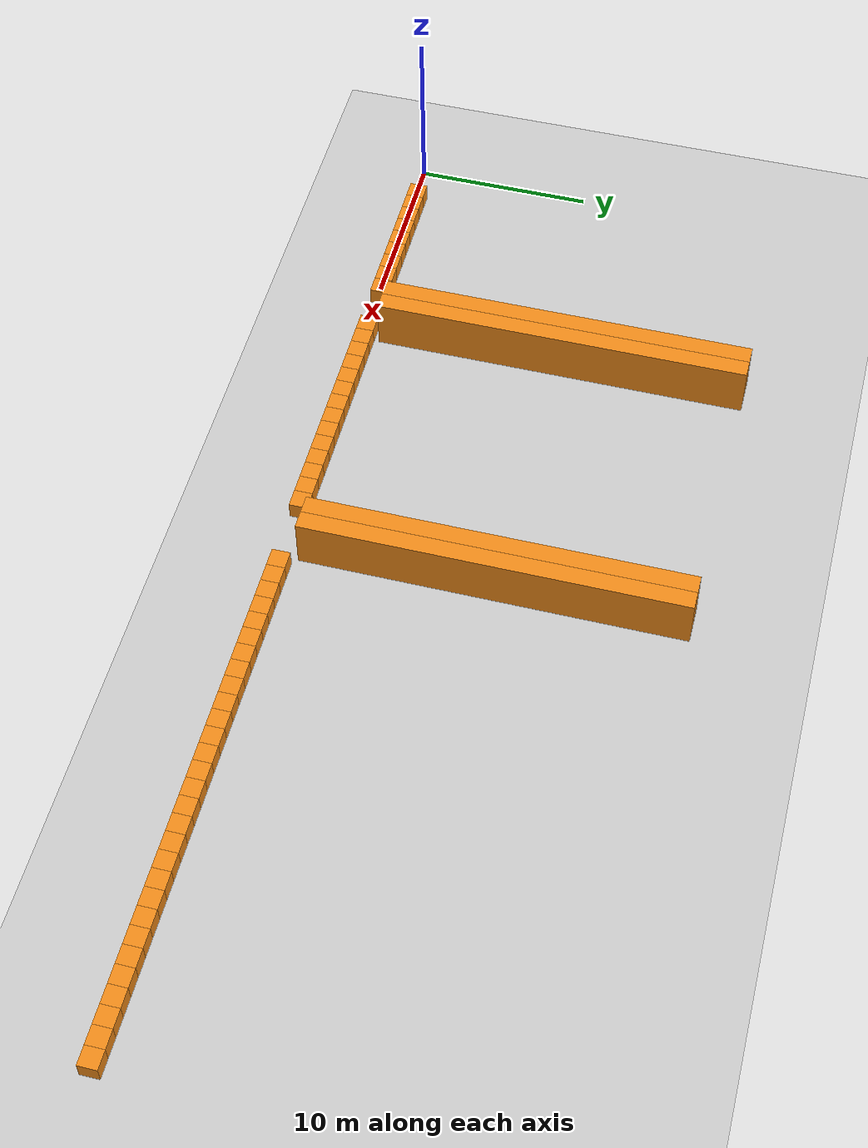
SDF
<sdf version="1.6">
 <world name="default">
  <include><uri>model://ground_plane</uri></include>
  <model name="unit_box_002">
   <pose>3.50     0.50     1.50 0 0 0</pose>
   <static>1</static>
   <link name="link">
    <inertial>
     <mass>5000</mass>
     <inertia><ixx>200</ixx><ixy>0</ixy><ixz>0</ixz><iyy>200</iyy><iyz>0</iyz><izz>200</izz></inertia>
    </inertial>
    <collision name="collision"><geometry><box><size>1 1 1</size></box></geometry></collision>
    <visual name="visual">
     <geometry><box><size>1 1 1</size></box></geometry>
     <material>
      <script><name>Gazebo/Orange</name><uri>file://media/materials/scripts/gazebo.material</uri></script>
     </material>
    </visual>
   </link>
  </model>
  <model name="unit_box_005">
   <pose>4.50     0.50     1.50 0 0 0</pose>
   <static>1</static>
   <link name="link">
    <inertial>
     <mass>5000</mass>
     <inertia><ixx>200</ixx><ixy>0</ixy><ixz>0</ixz><iyy>200</iyy><iyz>0</iyz><izz>200</izz></inertia>
    </inertial>
    <collision name="collision"><geometry><box><size>1 1 1</size></box></geometry></collision>
    <visual name="visual">
     <geometry><box><size>1 1 1</size></box></geometry>
     <material>
      <script><name>Gazebo/Orange</name><uri>file://media/materials/scripts/gazebo.material</uri></script>
     </material>
    </visual>
   </link>
  </model>
  <model name="unit_box_008">
   <pose>5.50     0.50     1.50 0 0 0</pose>
   <static>1</static>
   <link name="link">
    <inertial>
     <mass>5000</mass>
     <inertia><ixx>200</ixx><ixy>0</ixy><ixz>0</ixz><iyy>200</iyy><iyz>0</iyz><izz>200</izz></inertia>
    </inertial>
    <collision name="collision"><geometry><box><size>1 1 1</size></box></geometry></collision>
    <visual name="visual">
     <geometry><box><size>1 1 1</size></box></geometry>
     <material>
      <script><name>Gazebo/Orange</name><uri>file://media/materials/scripts/gazebo.material</uri></script>
     </material>
    </visual>
   </link>
  </model>
  <model name="unit_box_011">
   <pose>6.50     0.50     1.50 0 0 0</pose>
   <static>1</static>
   <link name="link">
    <inertial>
     <mass>5000</mass>
     <inertia><ixx>200</ixx><ixy>0</ixy><ixz>0</ixz><iyy>200</iyy><iyz>0</iyz><izz>200</izz></inertia>
    </inertial>
    <collision name="collision"><geometry><box><size>1 1 1</size></box></geometry></collision>
    <visual name="visual">
     <geometry><box><size>1 1 1</size></box></geometry>
     <material>
      <script><name>Gazebo/Orange</name><uri>file://media/materials/scripts/gazebo.material</uri></script>
     </material>
    </visual>
   </link>
  </model>
  <model name="unit_box_014">
   <pose>7.50     0.50     1.50 0 0 0</pose>
   <static>1</static>
   <link name="link">
    <inertial>
     <mass>5000</mass>
     <inertia><ixx>200</ixx><ixy>0</ixy><ixz>0</ixz><iyy>200</iyy><iyz>0</iyz><izz>200</izz></inertia>
    </inertial>
    <collision name="collision"><geometry><box><size>1 1 1</size></box></geometry></collision>
    <visual name="visual">
     <geometry><box><size>1 1 1</size></box></geometry>
     <material>
      <script><name>Gazebo/Orange</name><uri>file://media/materials/scripts/gazebo.material</uri></script>
     </material>
    </visual>
   </link>
  </model>
  <model name="unit_box_017">
   <pose>8.50     0.50     1.50 0 0 0</pose>
   <static>1</static>
   <link name="link">
    <inertial>
     <mass>5000</mass>
     <inertia><ixx>200</ixx><ixy>0</ixy><ixz>0</ixz><iyy>200</iyy><iyz>0</iyz><izz>200</izz></inertia>
    </inertial>
    <collision name="collision"><geometry><box><size>1 1 1</size></box></geometry></collision>
    <visual name="visual">
     <geometry><box><size>1 1 1</size></box></geometry>
     <material>
      <script><name>Gazebo/Orange</name><uri>file://media/materials/scripts/gazebo.material</uri></script>
     </material>
    </visual>
   </link>
  </model>
  <model name="unit_box_020">
   <pose>9.50     0.50     1.50 0 0 0</pose>
   <static>1</static>
   <link name="link">
    <inertial>
     <mass>5000</mass>
     <inertia><ixx>200</ixx><ixy>0</ixy><ixz>0</ixz><iyy>200</iyy><iyz>0</iyz><izz>200</izz></inertia>
    </inertial>
    <collision name="collision"><geometry><box><size>1 1 1</size></box></geometry></collision>
    <visual name="visual">
     <geometry><box><size>1 1 1</size></box></geometry>
     <material>
      <script><name>Gazebo/Orange</name><uri>file://media/materials/scripts/gazebo.material</uri></script>
     </material>
    </visual>
   </link>
  </model>
  <model name="unit_box_023">
   <pose>10.50     0.50     1.50 0 0 0</pose>
   <static>1</static>
   <link name="link">
    <inertial>
     <mass>5000</mass>
     <inertia><ixx>200</ixx><ixy>0</ixy><ixz>0</ixz><iyy>200</iyy><iyz>0</iyz><izz>200</izz></inertia>
    </inertial>
    <collision name="collision"><geometry><box><size>1 1 1</size></box></geometry></collision>
    <visual name="visual">
     <geometry><box><size>1 1 1</size></box></geometry>
     <material>
      <script><name>Gazebo/Orange</name><uri>file://media/materials/scripts/gazebo.material</uri></script>
     </material>
    </visual>
   </link>
  </model>
  <model name="unit_box_025">
   <pose>11.50     0.50     1.50 0 0 0</pose>
   <static>1</static>
   <link name="link">
    <inertial>
     <mass>5000</mass>
     <inertia><ixx>200</ixx><ixy>0</ixy><ixz>0</ixz><iyy>200</iyy><iyz>0</iyz><izz>200</izz></inertia>
    </inertial>
    <collision name="collision"><geometry><box><size>1 1 1</size></box></geometry></collision>
    <visual name="visual">
     <geometry><box><size>1 1 1</size></box></geometry>
     <material>
      <script><name>Gazebo/Orange</name><uri>file://media/materials/scripts/gazebo.material</uri></script>
     </material>
    </visual>
   </link>
  </model>
  <model name="unit_box_027">
   <pose>12.50    11.50     1.50 0 0 0</pose>
   <static>1</static>
   <link name="link">
    <inertial>
     <mass>5000</mass>
     <inertia><ixx>200</ixx><ixy>0</ixy><ixz>0</ixz><iyy>200</iyy><iyz>0</iyz><izz>200</izz></inertia>
    </inertial>
    <collision name="collision"><geometry><box><size>1 21 3</size></box></geometry></collision>
    <visual name="visual">
     <geometry><box><size>1 21 3</size></box></geometry>
     <material>
      <script><name>Gazebo/Orange</name><uri>file://media/materials/scripts/gazebo.material</uri></script>
     </material>
    </visual>
   </link>
  </model>
  <model name="unit_box_029">
   <pose>13.50    11.50     1.50 0 0 0</pose>
   <static>1</static>
   <link name="link">
    <inertial>
     <mass>5000</mass>
     <inertia><ixx>200</ixx><ixy>0</ixy><ixz>0</ixz><iyy>200</iyy><iyz>0</iyz><izz>200</izz></inertia>
    </inertial>
    <collision name="collision"><geometry><box><size>1 21 3</size></box></geometry></collision>
    <visual name="visual">
     <geometry><box><size>1 21 3</size></box></geometry>
     <material>
      <script><name>Gazebo/Orange</name><uri>file://media/materials/scripts/gazebo.material</uri></script>
     </material>
    </visual>
   </link>
  </model>
  <model name="unit_box_031">
   <pose>14.50     0.50     1.50 0 0 0</pose>
   <static>1</static>
   <link name="link">
    <inertial>
     <mass>5000</mass>
     <inertia><ixx>200</ixx><ixy>0</ixy><ixz>0</ixz><iyy>200</iyy><iyz>0</iyz><izz>200</izz></inertia>
    </inertial>
    <collision name="collision"><geometry><box><size>1 1 1</size></box></geometry></collision>
    <visual name="visual">
     <geometry><box><size>1 1 1</size></box></geometry>
     <material>
      <script><name>Gazebo/Orange</name><uri>file://media/materials/scripts/gazebo.material</uri></script>
     </material>
    </visual>
   </link>
  </model>
  <model name="unit_box_033">
   <pose>15.50     0.50     1.50 0 0 0</pose>
   <static>1</static>
   <link name="link">
    <inertial>
     <mass>5000</mass>
     <inertia><ixx>200</ixx><ixy>0</ixy><ixz>0</ixz><iyy>200</iyy><iyz>0</iyz><izz>200</izz></inertia>
    </inertial>
    <collision name="collision"><geometry><box><size>1 1 1</size></box></geometry></collision>
    <visual name="visual">
     <geometry><box><size>1 1 1</size></box></geometry>
     <material>
      <script><name>Gazebo/Orange</name><uri>file://media/materials/scripts/gazebo.material</uri></script>
     </material>
    </visual>
   </link>
  </model>
  <model name="unit_box_035">
   <pose>16.50     0.50     1.50 0 0 0</pose>
   <static>1</static>
   <link name="link">
    <inertial>
     <mass>5000</mass>
     <inertia><ixx>200</ixx><ixy>0</ixy><ixz>0</ixz><iyy>200</iyy><iyz>0</iyz><izz>200</izz></inertia>
    </inertial>
    <collision name="collision"><geometry><box><size>1 1 1</size></box></geometry></collision>
    <visual name="visual">
     <geometry><box><size>1 1 1</size></box></geometry>
     <material>
      <script><name>Gazebo/Orange</name><uri>file://media/materials/scripts/gazebo.material</uri></script>
     </material>
    </visual>
   </link>
  </model>
  <model name="unit_box_037">
   <pose>17.50     0.50     1.50 0 0 0</pose>
   <static>1</static>
   <link name="link">
    <inertial>
     <mass>5000</mass>
     <inertia><ixx>200</ixx><ixy>0</ixy><ixz>0</ixz><iyy>200</iyy><iyz>0</iyz><izz>200</izz></inertia>
    </inertial>
    <collision name="collision"><geometry><box><size>1 1 1</size></box></geometry></collision>
    <visual name="visual">
     <geometry><box><size>1 1 1</size></box></geometry>
     <material>
      <script><name>Gazebo/Orange</name><uri>file://media/materials/scripts/gazebo.material</uri></script>
     </material>
    </visual>
   </link>
  </model>
  <model name="unit_box_040">
   <pose>18.50     0.50     1.50 0 0 0</pose>
   <static>1</static>
   <link name="link">
    <inertial>
     <mass>5000</mass>
     <inertia><ixx>200</ixx><ixy>0</ixy><ixz>0</ixz><iyy>200</iyy><iyz>0</iyz><izz>200</izz></inertia>
    </inertial>
    <collision name="collision"><geometry><box><size>1 1 1</size></box></geometry></collision>
    <visual name="visual">
     <geometry><box><size>1 1 1</size></box></geometry>
     <material>
      <script><name>Gazebo/Orange</name><uri>file://media/materials/scripts/gazebo.material</uri></script>
     </material>
    </visual>
   </link>
  </model>
  <model name="unit_box_043">
   <pose>19.50     0.50     1.50 0 0 0</pose>
   <static>1</static>
   <link name="link">
    <inertial>
     <mass>5000</mass>
     <inertia><ixx>200</ixx><ixy>0</ixy><ixz>0</ixz><iyy>200</iyy><iyz>0</iyz><izz>200</izz></inertia>
    </inertial>
    <collision name="collision"><geometry><box><size>1 1 1</size></box></geometry></collision>
    <visual name="visual">
     <geometry><box><size>1 1 1</size></box></geometry>
     <material>
      <script><name>Gazebo/Orange</name><uri>file://media/materials/scripts/gazebo.material</uri></script>
     </material>
    </visual>
   </link>
  </model>
  <model name="unit_box_046">
   <pose>20.50     0.50     1.50 0 0 0</pose>
   <static>1</static>
   <link name="link">
    <inertial>
     <mass>5000</mass>
     <inertia><ixx>200</ixx><ixy>0</ixy><ixz>0</ixz><iyy>200</iyy><iyz>0</iyz><izz>200</izz></inertia>
    </inertial>
    <collision name="collision"><geometry><box><size>1 1 1</size></box></geometry></collision>
    <visual name="visual">
     <geometry><box><size>1 1 1</size></box></geometry>
     <material>
      <script><name>Gazebo/Orange</name><uri>file://media/materials/scripts/gazebo.material</uri></script>
     </material>
    </visual>
   </link>
  </model>
  <model name="unit_box_049">
   <pose>21.50     0.50     1.50 0 0 0</pose>
   <static>1</static>
   <link name="link">
    <inertial>
     <mass>5000</mass>
     <inertia><ixx>200</ixx><ixy>0</ixy><ixz>0</ixz><iyy>200</iyy><iyz>0</iyz><izz>200</izz></inertia>
    </inertial>
    <collision name="collision"><geometry><box><size>1 1 1</size></box></geometry></collision>
    <visual name="visual">
     <geometry><box><size>1 1 1</size></box></geometry>
     <material>
      <script><name>Gazebo/Orange</name><uri>file://media/materials/scripts/gazebo.material</uri></script>
     </material>
    </visual>
   </link>
  </model>
  <model name="unit_box_052">
   <pose>22.50     0.50     1.50 0 0 0</pose>
   <static>1</static>
   <link name="link">
    <inertial>
     <mass>5000</mass>
     <inertia><ixx>200</ixx><ixy>0</ixy><ixz>0</ixz><iyy>200</iyy><iyz>0</iyz><izz>200</izz></inertia>
    </inertial>
    <collision name="collision"><geometry><box><size>1 1 1</size></box></geometry></collision>
    <visual name="visual">
     <geometry><box><size>1 1 1</size></box></geometry>
     <material>
      <script><name>Gazebo/Orange</name><uri>file://media/materials/scripts/gazebo.material</uri></script>
     </material>
    </visual>
   </link>
  </model>
  <model name="unit_box_055">
   <pose>23.50     0.50     1.50 0 0 0</pose>
   <static>1</static>
   <link name="link">
    <inertial>
     <mass>5000</mass>
     <inertia><ixx>200</ixx><ixy>0</ixy><ixz>0</ixz><iyy>200</iyy><iyz>0</iyz><izz>200</izz></inertia>
    </inertial>
    <collision name="collision"><geometry><box><size>1 1 1</size></box></geometry></collision>
    <visual name="visual">
     <geometry><box><size>1 1 1</size></box></geometry>
     <material>
      <script><name>Gazebo/Orange</name><uri>file://media/materials/scripts/gazebo.material</uri></script>
     </material>
    </visual>
   </link>
  </model>
  <model name="unit_box_058">
   <pose>24.50     0.50     1.50 0 0 0</pose>
   <static>1</static>
   <link name="link">
    <inertial>
     <mass>5000</mass>
     <inertia><ixx>200</ixx><ixy>0</ixy><ixz>0</ixz><iyy>200</iyy><iyz>0</iyz><izz>200</izz></inertia>
    </inertial>
    <collision name="collision"><geometry><box><size>1 1 1</size></box></geometry></collision>
    <visual name="visual">
     <geometry><box><size>1 1 1</size></box></geometry>
     <material>
      <script><name>Gazebo/Orange</name><uri>file://media/materials/scripts/gazebo.material</uri></script>
     </material>
    </visual>
   </link>
  </model>
  <model name="unit_box_061">
   <pose>25.50     0.50     1.50 0 0 0</pose>
   <static>1</static>
   <link name="link">
    <inertial>
     <mass>5000</mass>
     <inertia><ixx>200</ixx><ixy>0</ixy><ixz>0</ixz><iyy>200</iyy><iyz>0</iyz><izz>200</izz></inertia>
    </inertial>
    <collision name="collision"><geometry><box><size>1 1 1</size></box></geometry></collision>
    <visual name="visual">
     <geometry><box><size>1 1 1</size></box></geometry>
     <material>
      <script><name>Gazebo/Orange</name><uri>file://media/materials/scripts/gazebo.material</uri></script>
     </material>
    </visual>
   </link>
  </model>
  <model name="unit_box_064">
   <pose>26.50     0.50     1.50 0 0 0</pose>
   <static>1</static>
   <link name="link">
    <inertial>
     <mass>5000</mass>
     <inertia><ixx>200</ixx><ixy>0</ixy><ixz>0</ixz><iyy>200</iyy><iyz>0</iyz><izz>200</izz></inertia>
    </inertial>
    <collision name="collision"><geometry><box><size>1 1 1</size></box></geometry></collision>
    <visual name="visual">
     <geometry><box><size>1 1 1</size></box></geometry>
     <material>
      <script><name>Gazebo/Orange</name><uri>file://media/materials/scripts/gazebo.material</uri></script>
     </material>
    </visual>
   </link>
  </model>
  <model name="unit_box_067">
   <pose>27.50     0.50     1.50 0 0 0</pose>
   <static>1</static>
   <link name="link">
    <inertial>
     <mass>5000</mass>
     <inertia><ixx>200</ixx><ixy>0</ixy><ixz>0</ixz><iyy>200</iyy><iyz>0</iyz><izz>200</izz></inertia>
    </inertial>
    <collision name="collision"><geometry><box><size>1 1 1</size></box></geometry></collision>
    <visual name="visual">
     <geometry><box><size>1 1 1</size></box></geometry>
     <material>
      <script><name>Gazebo/Orange</name><uri>file://media/materials/scripts/gazebo.material</uri></script>
     </material>
    </visual>
   </link>
  </model>
  <model name="unit_box_070">
   <pose>28.50    11.50     1.50 0 0 0</pose>
   <static>1</static>
   <link name="link">
    <inertial>
     <mass>5000</mass>
     <inertia><ixx>200</ixx><ixy>0</ixy><ixz>0</ixz><iyy>200</iyy><iyz>0</iyz><izz>200</izz></inertia>
    </inertial>
    <collision name="collision"><geometry><box><size>1 21 3</size></box></geometry></collision>
    <visual name="visual">
     <geometry><box><size>1 21 3</size></box></geometry>
     <material>
      <script><name>Gazebo/Orange</name><uri>file://media/materials/scripts/gazebo.material</uri></script>
     </material>
    </visual>
   </link>
  </model>
  <model name="unit_box_073">
   <pose>29.50    11.50     1.50 0 0 0</pose>
   <static>1</static>
   <link name="link">
    <inertial>
     <mass>5000</mass>
     <inertia><ixx>200</ixx><ixy>0</ixy><ixz>0</ixz><iyy>200</iyy><iyz>0</iyz><izz>200</izz></inertia>
    </inertial>
    <collision name="collision"><geometry><box><size>1 21 3</size></box></geometry></collision>
    <visual name="visual">
     <geometry><box><size>1 21 3</size></box></geometry>
     <material>
      <script><name>Gazebo/Orange</name><uri>file://media/materials/scripts/gazebo.material</uri></script>
     </material>
    </visual>
   </link>
  </model>
  <model name="unit_box_079">
   <pose>31.50     0.50     1.50 0 0 0</pose>
   <static>1</static>
   <link name="link">
    <inertial>
     <mass>5000</mass>
     <inertia><ixx>200</ixx><ixy>0</ixy><ixz>0</ixz><iyy>200</iyy><iyz>0</iyz><izz>200</izz></inertia>
    </inertial>
    <collision name="collision"><geometry><box><size>1 1 1</size></box></geometry></collision>
    <visual name="visual">
     <geometry><box><size>1 1 1</size></box></geometry>
     <material>
      <script><name>Gazebo/Orange</name><uri>file://media/materials/scripts/gazebo.material</uri></script>
     </material>
    </visual>
   </link>
  </model>
  <model name="unit_box_082">
   <pose>32.50     0.50     1.50 0 0 0</pose>
   <static>1</static>
   <link name="link">
    <inertial>
     <mass>5000</mass>
     <inertia><ixx>200</ixx><ixy>0</ixy><ixz>0</ixz><iyy>200</iyy><iyz>0</iyz><izz>200</izz></inertia>
    </inertial>
    <collision name="collision"><geometry><box><size>1 1 1</size></box></geometry></collision>
    <visual name="visual">
     <geometry><box><size>1 1 1</size></box></geometry>
     <material>
      <script><name>Gazebo/Orange</name><uri>file://media/materials/scripts/gazebo.material</uri></script>
     </material>
    </visual>
   </link>
  </model>
  <model name="unit_box_085">
   <pose>33.50     0.50     1.50 0 0 0</pose>
   <static>1</static>
   <link name="link">
    <inertial>
     <mass>5000</mass>
     <inertia><ixx>200</ixx><ixy>0</ixy><ixz>0</ixz><iyy>200</iyy><iyz>0</iyz><izz>200</izz></inertia>
    </inertial>
    <collision name="collision"><geometry><box><size>1 1 1</size></box></geometry></collision>
    <visual name="visual">
     <geometry><box><size>1 1 1</size></box></geometry>
     <material>
      <script><name>Gazebo/Orange</name><uri>file://media/materials/scripts/gazebo.material</uri></script>
     </material>
    </visual>
   </link>
  </model>
  <model name="unit_box_088">
   <pose>34.50     0.50     1.50 0 0 0</pose>
   <static>1</static>
   <link name="link">
    <inertial>
     <mass>5000</mass>
     <inertia><ixx>200</ixx><ixy>0</ixy><ixz>0</ixz><iyy>200</iyy><iyz>0</iyz><izz>200</izz></inertia>
    </inertial>
    <collision name="collision"><geometry><box><size>1 1 1</size></box></geometry></collision>
    <visual name="visual">
     <geometry><box><size>1 1 1</size></box></geometry>
     <material>
      <script><name>Gazebo/Orange</name><uri>file://media/materials/scripts/gazebo.material</uri></script>
     </material>
    </visual>
   </link>
  </model>
  <model name="unit_box_091">
   <pose>35.50     0.50     1.50 0 0 0</pose>
   <static>1</static>
   <link name="link">
    <inertial>
     <mass>5000</mass>
     <inertia><ixx>200</ixx><ixy>0</ixy><ixz>0</ixz><iyy>200</iyy><iyz>0</iyz><izz>200</izz></inertia>
    </inertial>
    <collision name="collision"><geometry><box><size>1 1 1</size></box></geometry></collision>
    <visual name="visual">
     <geometry><box><size>1 1 1</size></box></geometry>
     <material>
      <script><name>Gazebo/Orange</name><uri>file://media/materials/scripts/gazebo.material</uri></script>
     </material>
    </visual>
   </link>
  </model>
  <model name="unit_box_094">
   <pose>36.50     0.50     1.50 0 0 0</pose>
   <static>1</static>
   <link name="link">
    <inertial>
     <mass>5000</mass>
     <inertia><ixx>200</ixx><ixy>0</ixy><ixz>0</ixz><iyy>200</iyy><iyz>0</iyz><izz>200</izz></inertia>
    </inertial>
    <collision name="collision"><geometry><box><size>1 1 1</size></box></geometry></collision>
    <visual name="visual">
     <geometry><box><size>1 1 1</size></box></geometry>
     <material>
      <script><name>Gazebo/Orange</name><uri>file://media/materials/scripts/gazebo.material</uri></script>
     </material>
    </visual>
   </link>
  </model>
  <model name="unit_box_097">
   <pose>37.50     0.50     1.50 0 0 0</pose>
   <static>1</static>
   <link name="link">
    <inertial>
     <mass>5000</mass>
     <inertia><ixx>200</ixx><ixy>0</ixy><ixz>0</ixz><iyy>200</iyy><iyz>0</iyz><izz>200</izz></inertia>
    </inertial>
    <collision name="collision"><geometry><box><size>1 1 1</size></box></geometry></collision>
    <visual name="visual">
     <geometry><box><size>1 1 1</size></box></geometry>
     <material>
      <script><name>Gazebo/Orange</name><uri>file://media/materials/scripts/gazebo.material</uri></script>
     </material>
    </visual>
   </link>
  </model>
  <model name="unit_box_100">
   <pose>38.50     0.50     1.50 0 0 0</pose>
   <static>1</static>
   <link name="link">
    <inertial>
     <mass>5000</mass>
     <inertia><ixx>200</ixx><ixy>0</ixy><ixz>0</ixz><iyy>200</iyy><iyz>0</iyz><izz>200</izz></inertia>
    </inertial>
    <collision name="collision"><geometry><box><size>1 1 1</size></box></geometry></collision>
    <visual name="visual">
     <geometry><box><size>1 1 1</size></box></geometry>
     <material>
      <script><name>Gazebo/Orange</name><uri>file://media/materials/scripts/gazebo.material</uri></script>
     </material>
    </visual>
   </link>
  </model>
  <model name="unit_box_103">
   <pose>39.50     0.50     1.50 0 0 0</pose>
   <static>1</static>
   <link name="link">
    <inertial>
     <mass>5000</mass>
     <inertia><ixx>200</ixx><ixy>0</ixy><ixz>0</ixz><iyy>200</iyy><iyz>0</iyz><izz>200</izz></inertia>
    </inertial>
    <collision name="collision"><geometry><box><size>1 1 1</size></box></geometry></collision>
    <visual name="visual">
     <geometry><box><size>1 1 1</size></box></geometry>
     <material>
      <script><name>Gazebo/Orange</name><uri>file://media/materials/scripts/gazebo.material</uri></script>
     </material>
    </visual>
   </link>
  </model>
  <model name="unit_box_106">
   <pose>40.50     0.50     1.50 0 0 0</pose>
   <static>1</static>
   <link name="link">
    <inertial>
     <mass>5000</mass>
     <inertia><ixx>200</ixx><ixy>0</ixy><ixz>0</ixz><iyy>200</iyy><iyz>0</iyz><izz>200</izz></inertia>
    </inertial>
    <collision name="collision"><geometry><box><size>1 1 1</size></box></geometry></collision>
    <visual name="visual">
     <geometry><box><size>1 1 1</size></box></geometry>
     <material>
      <script><name>Gazebo/Orange</name><uri>file://media/materials/scripts/gazebo.material</uri></script>
     </material>
    </visual>
   </link>
  </model>
  <model name="unit_box_109">
   <pose>41.50     0.50     1.50 0 0 0</pose>
   <static>1</static>
   <link name="link">
    <inertial>
     <mass>5000</mass>
     <inertia><ixx>200</ixx><ixy>0</ixy><ixz>0</ixz><iyy>200</iyy><iyz>0</iyz><izz>200</izz></inertia>
    </inertial>
    <collision name="collision"><geometry><box><size>1 1 1</size></box></geometry></collision>
    <visual name="visual">
     <geometry><box><size>1 1 1</size></box></geometry>
     <material>
      <script><name>Gazebo/Orange</name><uri>file://media/materials/scripts/gazebo.material</uri></script>
     </material>
    </visual>
   </link>
  </model>
  <model name="unit_box_112">
   <pose>42.50     0.50     1.50 0 0 0</pose>
   <static>1</static>
   <link name="link">
    <inertial>
     <mass>5000</mass>
     <inertia><ixx>200</ixx><ixy>0</ixy><ixz>0</ixz><iyy>200</iyy><iyz>0</iyz><izz>200</izz></inertia>
    </inertial>
    <collision name="collision"><geometry><box><size>1 1 1</size></box></geometry></collision>
    <visual name="visual">
     <geometry><box><size>1 1 1</size></box></geometry>
     <material>
      <script><name>Gazebo/Orange</name><uri>file://media/materials/scripts/gazebo.material</uri></script>
     </material>
    </visual>
   </link>
  </model>
  <model name="unit_box_116">
   <pose>43.50     0.50     1.50 0 0 0</pose>
   <static>1</static>
   <link name="link">
    <inertial>
     <mass>5000</mass>
     <inertia><ixx>200</ixx><ixy>0</ixy><ixz>0</ixz><iyy>200</iyy><iyz>0</iyz><izz>200</izz></inertia>
    </inertial>
    <collision name="collision"><geometry><box><size>1 1 1</size></box></geometry></collision>
    <visual name="visual">
     <geometry><box><size>1 1 1</size></box></geometry>
     <material>
      <script><name>Gazebo/Orange</name><uri>file://media/materials/scripts/gazebo.material</uri></script>
     </material>
    </visual>
   </link>
  </model>
  <model name="unit_box_119">
   <pose>44.50     0.50     1.50 0 0 0</pose>
   <static>1</static>
   <link name="link">
    <inertial>
     <mass>5000</mass>
     <inertia><ixx>200</ixx><ixy>0</ixy><ixz>0</ixz><iyy>200</iyy><iyz>0</iyz><izz>200</izz></inertia>
    </inertial>
    <collision name="collision"><geometry><box><size>1 1 1</size></box></geometry></collision>
    <visual name="visual">
     <geometry><box><size>1 1 1</size></box></geometry>
     <material>
      <script><name>Gazebo/Orange</name><uri>file://media/materials/scripts/gazebo.material</uri></script>
     </material>
    </visual>
   </link>
  </model>
  <model name="unit_box_122">
   <pose>45.50     0.50     1.50 0 0 0</pose>
   <static>1</static>
   <link name="link">
    <inertial>
     <mass>5000</mass>
     <inertia><ixx>200</ixx><ixy>0</ixy><ixz>0</ixz><iyy>200</iyy><iyz>0</iyz><izz>200</izz></inertia>
    </inertial>
    <collision name="collision"><geometry><box><size>1 1 1</size></box></geometry></collision>
    <visual name="visual">
     <geometry><box><size>1 1 1</size></box></geometry>
     <material>
      <script><name>Gazebo/Orange</name><uri>file://media/materials/scripts/gazebo.material</uri></script>
     </material>
    </visual>
   </link>
  </model>
  <model name="unit_box_125">
   <pose>46.50     0.50     1.50 0 0 0</pose>
   <static>1</static>
   <link name="link">
    <inertial>
     <mass>5000</mass>
     <inertia><ixx>200</ixx><ixy>0</ixy><ixz>0</ixz><iyy>200</iyy><iyz>0</iyz><izz>200</izz></inertia>
    </inertial>
    <collision name="collision"><geometry><box><size>1 1 1</size></box></geometry></collision>
    <visual name="visual">
     <geometry><box><size>1 1 1</size></box></geometry>
     <material>
      <script><name>Gazebo/Orange</name><uri>file://media/materials/scripts/gazebo.material</uri></script>
     </material>
    </visual>
   </link>
  </model>
  <model name="unit_box_128">
   <pose>47.50     0.50     1.50 0 0 0</pose>
   <static>1</static>
   <link name="link">
    <inertial>
     <mass>5000</mass>
     <inertia><ixx>200</ixx><ixy>0</ixy><ixz>0</ixz><iyy>200</iyy><iyz>0</iyz><izz>200</izz></inertia>
    </inertial>
    <collision name="collision"><geometry><box><size>1 1 1</size></box></geometry></collision>
    <visual name="visual">
     <geometry><box><size>1 1 1</size></box></geometry>
     <material>
      <script><name>Gazebo/Orange</name><uri>file://media/materials/scripts/gazebo.material</uri></script>
     </material>
    </visual>
   </link>
  </model>
  <model name="unit_box_131">
   <pose>48.50     0.50     1.50 0 0 0</pose>
   <static>1</static>
   <link name="link">
    <inertial>
     <mass>5000</mass>
     <inertia><ixx>200</ixx><ixy>0</ixy><ixz>0</ixz><iyy>200</iyy><iyz>0</iyz><izz>200</izz></inertia>
    </inertial>
    <collision name="collision"><geometry><box><size>1 1 1</size></box></geometry></collision>
    <visual name="visual">
     <geometry><box><size>1 1 1</size></box></geometry>
     <material>
      <script><name>Gazebo/Orange</name><uri>file://media/materials/scripts/gazebo.material</uri></script>
     </material>
    </visual>
   </link>
  </model>
  <model name="unit_box_134">
   <pose>49.50     0.50     1.50 0 0 0</pose>
   <static>1</static>
   <link name="link">
    <inertial>
     <mass>5000</mass>
     <inertia><ixx>200</ixx><ixy>0</ixy><ixz>0</ixz><iyy>200</iyy><iyz>0</iyz><izz>200</izz></inertia>
    </inertial>
    <collision name="collision"><geometry><box><size>1 1 1</size></box></geometry></collision>
    <visual name="visual">
     <geometry><box><size>1 1 1</size></box></geometry>
     <material>
      <script><name>Gazebo/Orange</name><uri>file://media/materials/scripts/gazebo.material</uri></script>
     </material>
    </visual>
   </link>
  </model>
  <model name="unit_box_137">
   <pose>50.50     0.50     1.50 0 0 0</pose>
   <static>1</static>
   <link name="link">
    <inertial>
     <mass>5000</mass>
     <inertia><ixx>200</ixx><ixy>0</ixy><ixz>0</ixz><iyy>200</iyy><iyz>0</iyz><izz>200</izz></inertia>
    </inertial>
    <collision name="collision"><geometry><box><size>1 1 1</size></box></geometry></collision>
    <visual name="visual">
     <geometry><box><size>1 1 1</size></box></geometry>
     <material>
      <script><name>Gazebo/Orange</name><uri>file://media/materials/scripts/gazebo.material</uri></script>
     </material>
    </visual>
   </link>
  </model>
  <model name="unit_box_140">
   <pose>51.50     0.50     1.50 0 0 0</pose>
   <static>1</static>
   <link name="link">
    <inertial>
     <mass>5000</mass>
     <inertia><ixx>200</ixx><ixy>0</ixy><ixz>0</ixz><iyy>200</iyy><iyz>0</iyz><izz>200</izz></inertia>
    </inertial>
    <collision name="collision"><geometry><box><size>1 1 1</size></box></geometry></collision>
    <visual name="visual">
     <geometry><box><size>1 1 1</size></box></geometry>
     <material>
      <script><name>Gazebo/Orange</name><uri>file://media/materials/scripts/gazebo.material</uri></script>
     </material>
    </visual>
   </link>
  </model>
  <model name="unit_box_143">
   <pose>52.50     0.50     1.50 0 0 0</pose>
   <static>1</static>
   <link name="link">
    <inertial>
     <mass>5000</mass>
     <inertia><ixx>200</ixx><ixy>0</ixy><ixz>0</ixz><iyy>200</iyy><iyz>0</iyz><izz>200</izz></inertia>
    </inertial>
    <collision name="collision"><geometry><box><size>1 1 1</size></box></geometry></collision>
    <visual name="visual">
     <geometry><box><size>1 1 1</size></box></geometry>
     <material>
      <script><name>Gazebo/Orange</name><uri>file://media/materials/scripts/gazebo.material</uri></script>
     </material>
    </visual>
   </link>
  </model>
  <model name="unit_box_146">
   <pose>53.50     0.50     1.50 0 0 0</pose>
   <static>1</static>
   <link name="link">
    <inertial>
     <mass>5000</mass>
     <inertia><ixx>200</ixx><ixy>0</ixy><ixz>0</ixz><iyy>200</iyy><iyz>0</iyz><izz>200</izz></inertia>
    </inertial>
    <collision name="collision"><geometry><box><size>1 1 1</size></box></geometry></collision>
    <visual name="visual">
     <geometry><box><size>1 1 1</size></box></geometry>
     <material>
      <script><name>Gazebo/Orange</name><uri>file://media/materials/scripts/gazebo.material</uri></script>
     </material>
    </visual>
   </link>
  </model>
  <model name="unit_box_149">
   <pose>54.50     0.50     1.50 0 0 0</pose>
   <static>1</static>
   <link name="link">
    <inertial>
     <mass>5000</mass>
     <inertia><ixx>200</ixx><ixy>0</ixy><ixz>0</ixz><iyy>200</iyy><iyz>0</iyz><izz>200</izz></inertia>
    </inertial>
    <collision name="collision"><geometry><box><size>1 1 1</size></box></geometry></collision>
    <visual name="visual">
     <geometry><box><size>1 1 1</size></box></geometry>
     <material>
      <script><name>Gazebo/Orange</name><uri>file://media/materials/scripts/gazebo.material</uri></script>
     </material>
    </visual>
   </link>
  </model>
  <model name="unit_box_152">
   <pose>55.50     0.50     1.50 0 0 0</pose>
   <static>1</static>
   <link name="link">
    <inertial>
     <mass>5000</mass>
     <inertia><ixx>200</ixx><ixy>0</ixy><ixz>0</ixz><iyy>200</iyy><iyz>0</iyz><izz>200</izz></inertia>
    </inertial>
    <collision name="collision"><geometry><box><size>1 1 1</size></box></geometry></collision>
    <visual name="visual">
     <geometry><box><size>1 1 1</size></box></geometry>
     <material>
      <script><name>Gazebo/Orange</name><uri>file://media/materials/scripts/gazebo.material</uri></script>
     </material>
    </visual>
   </link>
  </model>
  <model name="unit_box_155">
   <pose>56.50     0.50     1.50 0 0 0</pose>
   <static>1</static>
   <link name="link">
    <inertial>
     <mass>5000</mass>
     <inertia><ixx>200</ixx><ixy>0</ixy><ixz>0</ixz><iyy>200</iyy><iyz>0</iyz><izz>200</izz></inertia>
    </inertial>
    <collision name="collision"><geometry><box><size>1 1 1</size></box></geometry></collision>
    <visual name="visual">
     <geometry><box><size>1 1 1</size></box></geometry>
     <material>
      <script><name>Gazebo/Orange</name><uri>file://media/materials/scripts/gazebo.material</uri></script>
     </material>
    </visual>
   </link>
  </model>
  <model name="unit_box_158">
   <pose>57.50     0.50     1.50 0 0 0</pose>
   <static>1</static>
   <link name="link">
    <inertial>
     <mass>5000</mass>
     <inertia><ixx>200</ixx><ixy>0</ixy><ixz>0</ixz><iyy>200</iyy><iyz>0</iyz><izz>200</izz></inertia>
    </inertial>
    <collision name="collision"><geometry><box><size>1 1 1</size></box></geometry></collision>
    <visual name="visual">
     <geometry><box><size>1 1 1</size></box></geometry>
     <material>
      <script><name>Gazebo/Orange</name><uri>file://media/materials/scripts/gazebo.material</uri></script>
     </material>
    </visual>
   </link>
  </model>
  <model name="unit_box_161">
   <pose>58.50     0.50     1.50 0 0 0</pose>
   <static>1</static>
   <link name="link">
    <inertial>
     <mass>5000</mass>
     <inertia><ixx>200</ixx><ixy>0</ixy><ixz>0</ixz><iyy>200</iyy><iyz>0</iyz><izz>200</izz></inertia>
    </inertial>
    <collision name="collision"><geometry><box><size>1 1 1</size></box></geometry></collision>
    <visual name="visual">
     <geometry><box><size>1 1 1</size></box></geometry>
     <material>
      <script><name>Gazebo/Orange</name><uri>file://media/materials/scripts/gazebo.material</uri></script>
     </material>
    </visual>
   </link>
  </model>
  <model name="unit_box_164">
   <pose>59.50     0.50     1.50 0 0 0</pose>
   <static>1</static>
   <link name="link">
    <inertial>
     <mass>5000</mass>
     <inertia><ixx>200</ixx><ixy>0</ixy><ixz>0</ixz><iyy>200</iyy><iyz>0</iyz><izz>200</izz></inertia>
    </inertial>
    <collision name="collision"><geometry><box><size>1 1 1</size></box></geometry></collision>
    <visual name="visual">
     <geometry><box><size>1 1 1</size></box></geometry>
     <material>
      <script><name>Gazebo/Orange</name><uri>file://media/materials/scripts/gazebo.material</uri></script>
     </material>
    </visual>
   </link>
  </model>
 </world>
</sdf>
